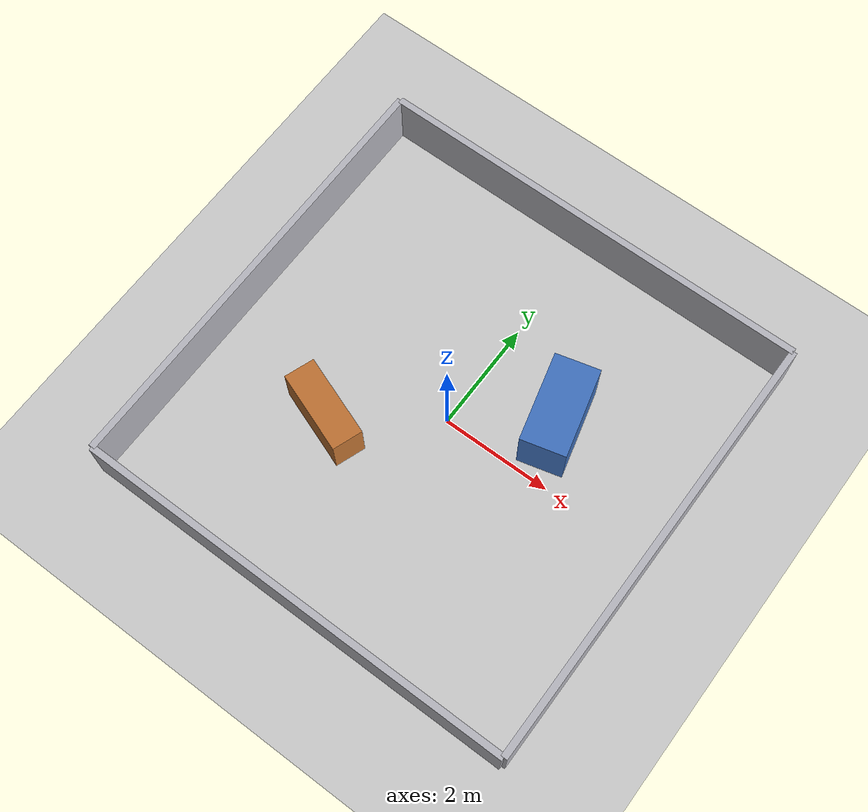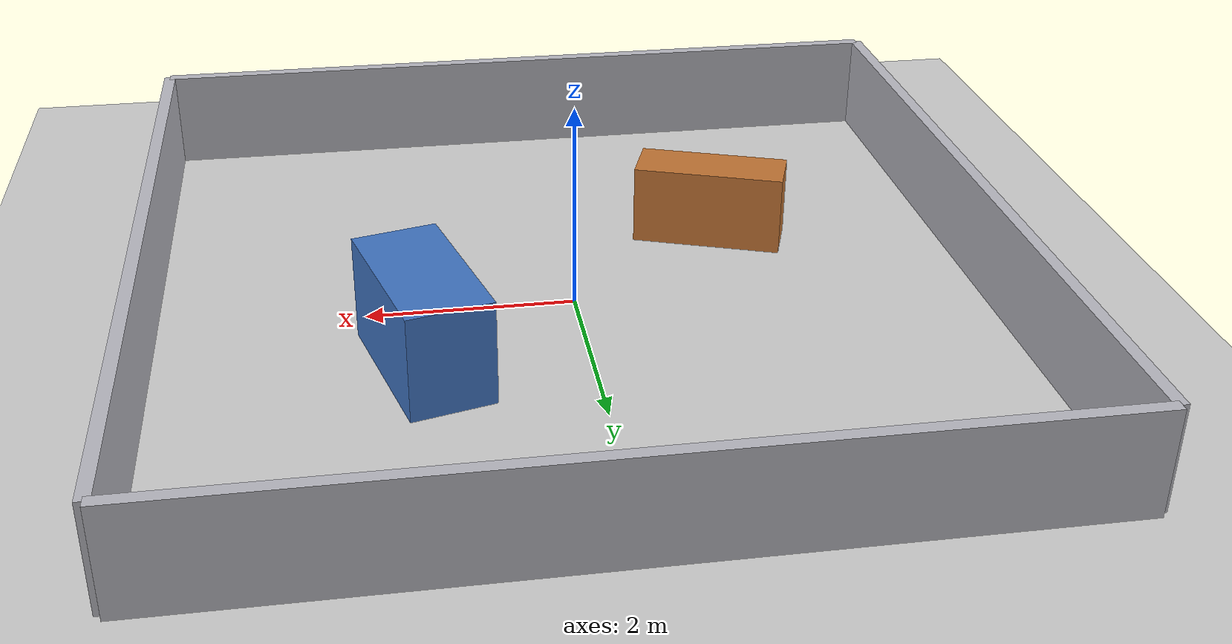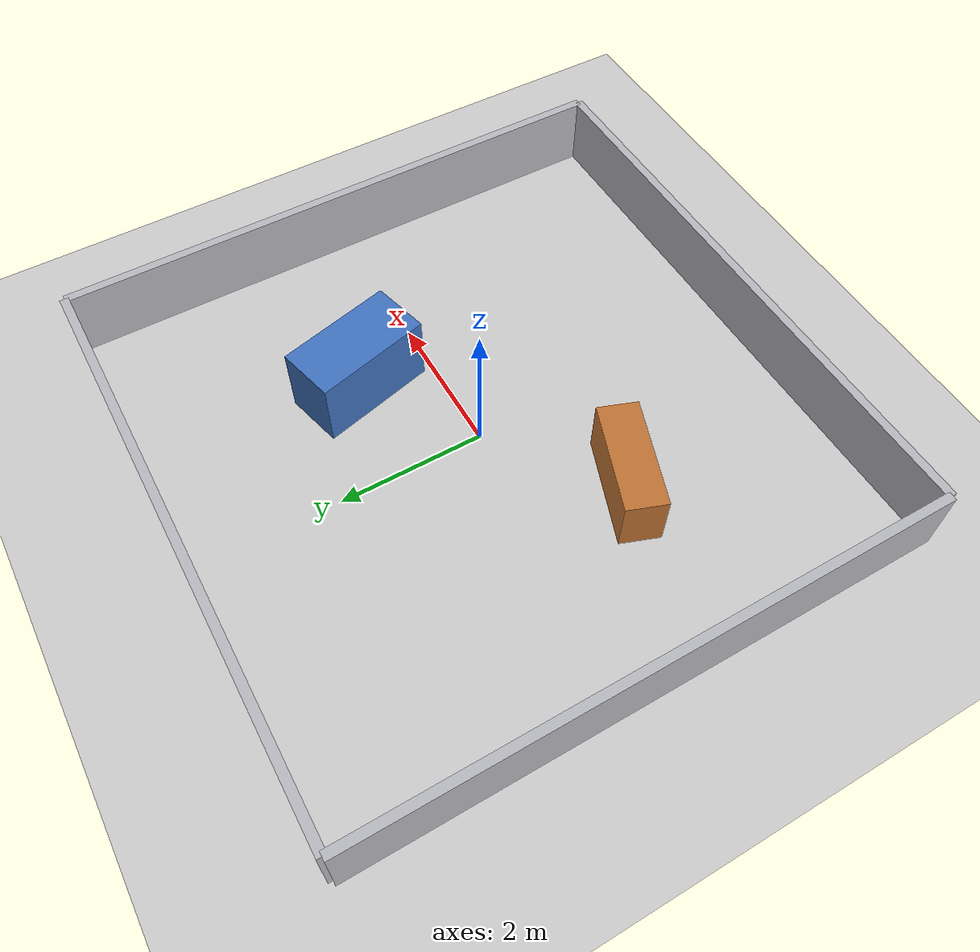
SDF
<?xml version="1.0"?>
<sdf version="1.6">
  <world name="aubo_mobile_training">
    <include>
      <uri>model://ground_plane</uri>
    </include>
    <include>
      <uri>model://sun</uri>
    </include>

    <model name="boundary_walls">
      <static>true</static>
      <link name="walls_link">
        <collision name="north_collision">
          <pose>0 4 0.5 0 0 0</pose>
          <geometry><box><size>8 0.12 1</size></box></geometry>
        </collision>
        <visual name="north_visual">
          <pose>0 4 0.5 0 0 0</pose>
          <geometry><box><size>8 0.12 1</size></box></geometry>
          <material><ambient>0.72 0.72 0.75 1</ambient></material>
        </visual>
        <collision name="south_collision">
          <pose>0 -4 0.5 0 0 0</pose>
          <geometry><box><size>8 0.12 1</size></box></geometry>
        </collision>
        <visual name="south_visual">
          <pose>0 -4 0.5 0 0 0</pose>
          <geometry><box><size>8 0.12 1</size></box></geometry>
          <material><ambient>0.72 0.72 0.75 1</ambient></material>
        </visual>
        <collision name="east_collision">
          <pose>4 0 0.5 0 0 0</pose>
          <geometry><box><size>0.12 8 1</size></box></geometry>
        </collision>
        <visual name="east_visual">
          <pose>4 0 0.5 0 0 0</pose>
          <geometry><box><size>0.12 8 1</size></box></geometry>
          <material><ambient>0.72 0.72 0.75 1</ambient></material>
        </visual>
        <collision name="west_collision">
          <pose>-4 0 0.5 0 0 0</pose>
          <geometry><box><size>0.12 8 1</size></box></geometry>
        </collision>
        <visual name="west_visual">
          <pose>-4 0 0.5 0 0 0</pose>
          <geometry><box><size>0.12 8 1</size></box></geometry>
          <material><ambient>0.72 0.72 0.75 1</ambient></material>
        </visual>
      </link>
    </model>

    <model name="long_obstacle">
      <static>true</static>
      <pose>1.5 1.0 0.5 0 0 0.25</pose>
      <link name="link">
        <collision name="collision">
          <geometry><box><size>0.8 1.6 1.0</size></box></geometry>
        </collision>
        <visual name="visual">
          <geometry><box><size>0.8 1.6 1.0</size></box></geometry>
          <material><ambient>0.25 0.45 0.75 1</ambient></material>
        </visual>
      </link>
    </model>

    <model name="low_obstacle">
      <static>true</static>
      <pose>-1.6 -1.2 0.4 0 0 -0.35</pose>
      <link name="link">
        <collision name="collision">
          <geometry><box><size>1.5 0.55 0.8</size></box></geometry>
        </collision>
        <visual name="visual">
          <geometry><box><size>1.5 0.55 0.8</size></box></geometry>
          <material><ambient>0.75 0.45 0.20 1</ambient></material>
        </visual>
      </link>
    </model>

    <physics name="navigation_physics" type="ode">
      <real_time_update_rate>1000</real_time_update_rate>
      <max_step_size>0.001</max_step_size>
      <ode>
        <solver><type>quick</type><iters>100</iters></solver>
      </ode>
    </physics>
  </world>
</sdf>
